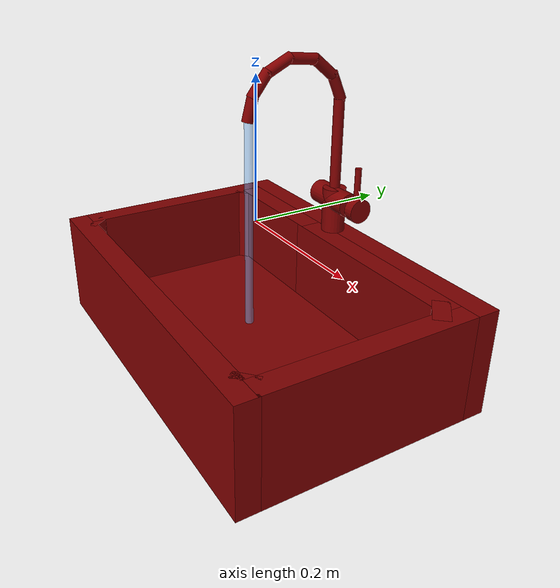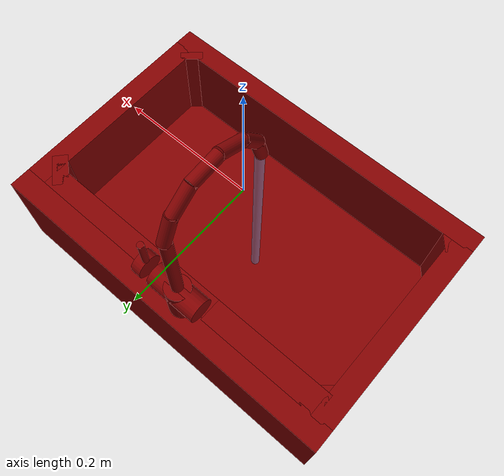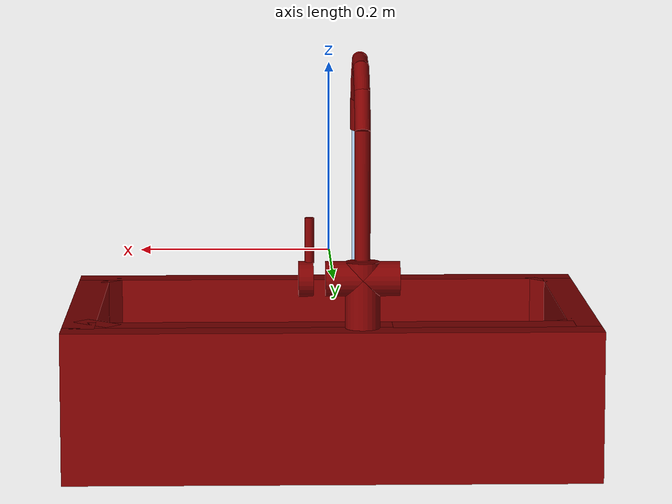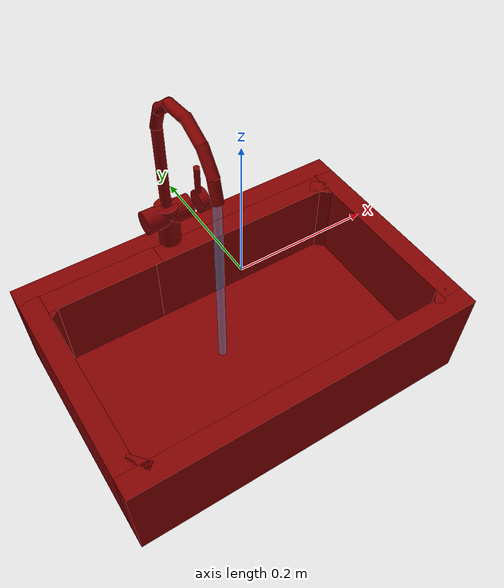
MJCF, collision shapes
<?xml version='1.0' encoding='UTF-8'?>
<mujoco model="model">
  <option timestep="0.002" gravity="0.0 0.0 -9.81"/>
  <compiler angle="radian"/>
  <asset>
    <mesh file="visuals/handle.obj" name="handle_vis"/>
    <mesh file="visuals/Body001.obj" name="Body001_vis"/>
    <mesh file="visuals/spout.obj" name="spout_vis"/>
    <texture file="visuals/T_BC001.png" name="Body001_material" type="2d"/>
    <material name="Body001_material" rgba="1 1 1 1.0" texture="Body001_material" shininess="0.1" specular="2"/>
    <texture file="visuals/T_BC001.png" name="handle_material" type="2d"/>
    <material name="handle_material" rgba="1 1 1 1.0" texture="handle_material" shininess="0.1" specular="5"/>
    <texture file="visuals/T_BC001.png" name="spout_material" type="2d"/>
    <material name="spout_material" rgba="1 1 1 1.0" texture="spout_material" shininess="0.1" specular="5"/>
  </asset>
  <default>
    <default class="visual">
      <geom conaffinity="0" contype="0" group="1" type="mesh"/>
    </default>
    <default class="collision">
      <geom group="0" rgba="0.5 0 0 0.5" solimp="0.998 0.998 0.001" solref="0.001 2"/>
    </default>
    <default class="spawn">
      <geom group="0" rgba="1 1 1 0.5" contype="0" conaffinity="0"/>
      <site group="0" rgba="1 1 1 0.5"/>
    </default>
    <default class="region">
      <geom group="1" conaffinity="0" contype="0" rgba="0 1 0 0"/>
    </default>
  </default>
  <worldbody>
    <body>
      <body name="object">
        <geom mesh="Body001_vis" type="mesh" solimp="0.998 0.998 0.001" solref="0.001 1" friction="0.95 0.3 0.1" class="visual" material="Body001_material"/>
        <geom type="box" pos="1.4057150110602379e-08 -0.16959254443645477 -0.13596001267433167" size="0.27581730484962463 0.01626265048980713 0.07840858399868011" quat="1.0 0.0 0.0 0.0" class="collision"/>
        <geom type="box" pos="-0.2598166763782501 -0.00048828125 -0.13596001267433167" size="0.016000591218471527 0.1563325673341751 0.07840858399868011" quat="1.0 0.0 0.0 0.0" class="collision"/>
        <geom type="box" pos="1.4057150110602379e-08 0.16901056468486786 -0.13596001267433167" size="0.27581730484962463 0.016844628378748894 0.07840858399868011" quat="1.0 0.0 0.0 0.0" class="collision"/>
        <geom type="box" pos="-0.15590538084506989 0.137120321393013 -0.13596001267433167" size="0.09381996095180511 0.017615949735045433 0.07840858399868011" quat="1.0 0.0 0.0 0.0" class="collision"/>
        <geom type="box" pos="0.08624917268753052 0.13671429455280304 -0.13596001267433167" size="0.15972907841205597 0.01723763905465603 0.07840854674577713" quat="1.0 0.0 0.0 0.0" class="collision"/>
        <geom type="box" pos="0.25908100605010986 -0.00048828125 -0.13596001267433167" size="0.016736263409256935 0.1563325673341751 0.07840857654809952" quat="1.0 0.0 0.0 0.0" class="collision"/>
        <geom type="box" pos="-0.2439178228378296 0.12083550542593002 -0.13596001267433167" size="0.014547471888363361 0.010007082484662533 0.07840856909751892" quat="0.9380559325218201 0.0 0.0 0.34648385643959045" class="collision"/>
        <geom type="box" pos="-0.24074673652648926 -0.1496688723564148 -0.13596001267433167" size="0.006329563912004232 0.01742745377123356 0.07840857654809952" quat="0.9380559325218201 0.0 0.0 0.34648385643959045" class="collision"/>
        <geom type="box" pos="0.24093635380268097 0.12339892983436584 -0.13596001267433167" size="0.02430211752653122 0.011633211746811867 0.07840857654809952" quat="0.9342470765113831 0.0 -0.0 -0.3566264510154724" class="collision"/>
        <geom type="box" pos="0.001804158091545105 0.0025504976511001587 -0.19731271266937256" size="0.24809125065803528 0.15592600405216217 0.01705588586628437" quat="1.0 0.0 0.0 0.0" class="collision"/>
        <geom type="cylinder" pos="-0.030668478459119797 0.15602917969226837 -0.006646901369094849" size="0.01782768778502941 0.037851620465517044" quat="0.7071068286895752 0.0 -0.7071067690849304 0.0" class="collision"/>
        <geom type="cylinder" pos="-0.030807096511125565 0.15602917969226837 -0.023696957156062126" size="0.01782768778502941 0.034247539937496185" quat="1.0 0.0 0.0 0.0" class="collision"/>
        <geom type="box" pos="0.23975878953933716 -0.15183337032794952 -0.13596001267433167" size="0.006763537414371967 0.01742745190858841 0.07840857654809952" quat="0.3990439176559448 0.0 0.0 0.9169318079948425" class="collision"/>
        <body name="handle">
          <joint axis="1.0 0.0 0.0" pos="0.024943118914961815 0.15571454167366028 -0.006675109267234802" limited="true" name="handle_temp_joint" type="hinge" range="-0.7853981633974483 0.7853981633974483" damping="0.5" frictionloss="1" armature="2"/>
          <joint axis="0.0 1.0 0.0" pos="0.024943118914961815 0.15571454167366028 -0.006675109267234802" limited="true" name="handle_joint" type="hinge" range="0 0.5" damping="0.5" frictionloss="1" armature="2"/>
          <geom mesh="handle_vis" type="mesh" solimp="0.998 0.998 0.001" solref="0.001 1" friction="0.95 0.3 0.1" class="visual" material="handle_material"/>
          <geom type="cylinder" pos="0.026946643367409706 0.15571820735931396 -0.00680498918518424" size="0.01793336682021618 0.00752879586070776" quat="0.7071068286895752 0.0 -0.7071067690849304 0.0" class="collision"/>
          <geom name="handle_main" type="cylinder" pos="0.02327681891620159 0.15583795309066772 0.03269347548484802" size="0.004669872112572193 0.023161819204688072" quat="1.0 0.0 0.0 0.0" class="collision"/>
        </body>
        <body name="spout">
          <joint axis="0.0 0.0 1.0" pos="-0.030478890985250473 0.1558258831501007 0.10708253085613251" limited="true" name="spout_joint" range="-0.7853981633974483 0.7853981633974483" type="hinge" damping="10"/>
          <site type="cylinder" rgba="0.5 0.75 1 0.5" size="0.006173485890030861 0.15829496085643768" pos="-0.030343852937221527 0.006556212902069092 -0.026110395789146423" name="water"/>
          <geom mesh="spout_vis" type="mesh" solimp="0.998 0.998 0.001" solref="0.001 1" friction="0.95 0.3 0.1" class="visual" material="spout_material"/>
          <geom type="cylinder" pos="-0.03048618510365486 0.15583795309066772 0.07846492528915405" size="0.008071539923548698 0.06615273654460907" quat="1.0 0.0 0.0 0.0" class="collision" name="spout_main"/>
          <geom type="cylinder" pos="-0.03048618510365486 0.14937466382980347 0.16299808025360107" size="0.008071539923548698 0.02138448879122734" quat="0.9780362844467163 0.20843477547168732 0.0 0.0" class="collision"/>
          <geom type="cylinder" pos="-0.03048618510365486 0.12654130160808563 0.19124218821525574" size="0.008071539923548698 0.02138448879122734" quat="0.902644693851471 0.43038657307624817 0.0 0.0" class="collision"/>
          <geom type="cylinder" pos="-0.03048618510365486 0.05284687131643295 0.20033225417137146" size="0.008071539923548698 0.02138448879122734" quat="0.5306106805801392 0.847615659236908 0.0 0.0" class="collision"/>
          <geom type="cylinder" pos="-0.03048618510365486 0.0910467728972435 0.20563477277755737" size="0.008071539923548698 0.02138449065387249" quat="0.7420269846916199 0.6703700423240662 0.0 0.0" class="collision"/>
          <geom type="cylinder" pos="-0.03048618510365486 0.023918822407722473 0.17762872576713562" size="0.008071539923548698 0.02138448879122734" quat="0.32088765501976013 0.947117269039154 0.0 0.0" class="collision"/>
          <geom type="cylinder" pos="-0.03048618510365486 0.009142711758613586 0.14683791995048523" size="0.008071539923548698 0.017457736656069756" quat="0.12741568684577942 0.991849422454834 0.0 0.0" class="collision"/>
        </body>
        <geom class="region" name="reg_basin" type="box" pos="-0.0007391571998596191 -0.016898594796657562 -0.11876633577048779" size="0.23503407633304596 0.12815377658605576 0.061751305893063546"/>
        <geom class="region" name="reg_main" type="box" pos="0.0 0.0 -0.13596001267433167" size="0.27681727504730225 0.1868551949262619 0.07940857654809952"/>
      </body>
    </body>
  </worldbody>
  <actuator>
    <motor name="handle_joint_actuator" joint="handle_joint" gear="10"/>
    <motor name="handle_temp_joint_actuator" joint="handle_temp_joint" gear="10"/>
    <motor name="spout_joint_actuator" joint="spout_joint" gear="10"/>
  </actuator>
</mujoco>
